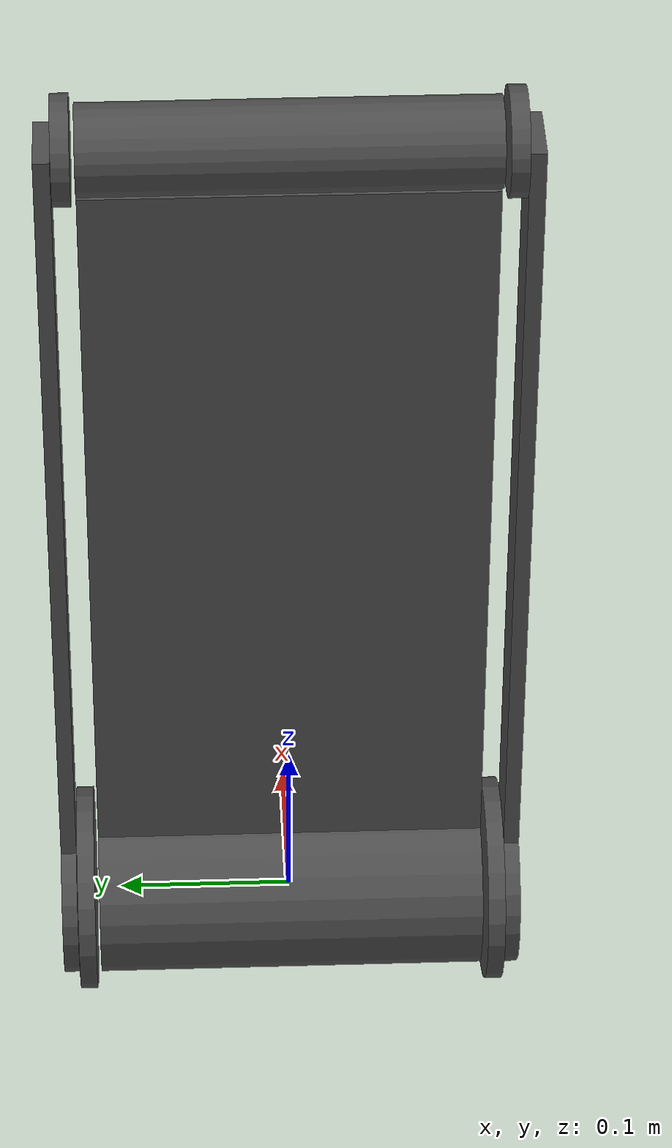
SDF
<?xml version='1.0'?>
<sdf version='1.6'>

  <model name='balance_robot'>

    <link name='base_robot'>
      <pose>0 0 0 0 0 0</pose>

      <inertial>
        <mass>20</mass>
        <pose>0 0 0.25 0 0 0</pose>
        <inertia>
          <ixx>0.17</ixx>
          <ixy>0</ixy>
          <ixz>0</ixz>
          <iyy>0.17</iyy>
          <iyz>0</iyz>
          <izz>0.07</izz>
        </inertia>
      </inertial>

      <visual name='body'>
        <pose>0 0 0.25 0 0 0</pose>
        <geometry>
          <box>
            <size>0.02 0.225 0.5</size>
          </box>
        </geometry>
        <material>
          <script>
            <uri>file://media/materials/scripts/gazebo.material</uri>
            <name>Gazebo/DarkGrey</name>
          </script>
        </material>
      </visual>

      <visual name='screen'>
        <pose>0.035 0 0.28 0 -0.04 0</pose>
        <geometry>
          <box>
            <size>0.002 0.225 0.45</size>
          </box>
        </geometry>
        <material>
          <script>
            <uri>file://media/materials/scripts/gazebo.material</uri>
            <name>Gazebo/Turquoise</name>
          </script>
        </material>
      </visual>

      <visual name='bottom_cylinder'>
        <pose>0 0 0 1.57 0 0</pose>
        <geometry>
          <cylinder>
            <radius>0.05</radius>
            <length>0.225</length>
          </cylinder>
        </geometry>
        <material>
          <script>
            <uri>file://media/materials/scripts/gazebo.material</uri>
            <name>Gazebo/DarkGrey</name>
          </script>
        </material>
      </visual>

      <collision name='bottom_cylinder_collision'>
        <pose>0 0 0 1.57 0 0</pose>
        <geometry>
          <cylinder>
            <radius>0.05</radius>
            <length>0.225</length>
          </cylinder>
        </geometry>
      </collision>

      <gravity>1</gravity>
      <velocity_decay/>
      <self_collide>0</self_collide>

    </link>

    <!-- Head -->

    <link name='head'>
      <pose>0 0 0.525 0 0 0</pose>

      <inertial>
        <mass>1</mass>
        <pose>0 0 0 0 0 0</pose>
        <inertia>
          <ixx>0.015</ixx>
          <ixy>0</ixy>
          <ixz>0</ixz>
          <iyy>0.005</iyy>
          <iyz>0</iyz>
          <izz>0.015</izz>
        </inertia>
      </inertial>

      <visual name='head_visual'>
        <pose>0 0 0 1.57 0 0</pose>
        <geometry>
          <cylinder>
            <radius>0.025</radius>
            <length>0.225</length>
          </cylinder>
        </geometry>
        <material>
          <script>
            <uri>file://media/materials/scripts/gazebo.material</uri>
            <name>Gazebo/DarkGrey</name>
          </script>
        </material>
      </visual>

      <collision name='head_collision'>
        <pose>0 0 0 1.57 0 0</pose>
        <geometry>
          <cylinder>
            <radius>0.025</radius>
            <length>0.225</length>
          </cylinder>
        </geometry>
      </collision>

      <sensor name="camera_imu" type="imu">
        <always_on>1</always_on>
      </sensor>

      <sensor name="camera" type="camera">
        <pose>0 0 0 0 0 0</pose>
        <camera>
          <horizontal_fov>2.0</horizontal_fov>
          <image>
            <format>R8G8B8</format>
            <width>640</width>
            <height>360</height>
          </image>
          <clip>
            <near>0.05</near>
            <far>15000</far>
          </clip>
        </camera>
        <always_on>1</always_on>
        <update_rate>10</update_rate>
        <visualize>false</visualize>

        <plugin name='camera_plugin' filename='libgazebo_ros_camera.so'>
          <alwaysOn>true</alwaysOn>
          <imageTopicName>image_raw</imageTopicName>
          <cameraInfoTopicName>camera_info</cameraInfoTopicName>
          <updateRate>30.0</updateRate>
          <cameraName>usb_cam</cameraName>
          <frameName>/robot_camera_link</frameName>
          <CxPrime>320.5</CxPrime>
          <Cx>320.5</Cx>
          <Cy>240.5</Cy>
          <hackBaseline>0</hackBaseline>
          <focalLength>277.191356</focalLength>
          <distortionK1>0.0</distortionK1>
          <distortionK2>0.0</distortionK2>
          <distortionK3>0.0</distortionK3>
          <distortionT1>0.0</distortionT1>
          <distortionT2>0.0</distortionT2>
        </plugin>

        <plugin name="GstCameraPlugin" filename="libgazebo_gst_camera_plugin.so">
            <robotNamespace></robotNamespace>
            <udpHost>127.0.0.1</udpHost>
            <udpPort>5600</udpPort>
        </plugin>

        <plugin name="CameraManagerPlugin" filename="libgazebo_camera_manager_plugin.so">
            <robotNamespace>550_frame</robotNamespace>
            <interval>1</interval>
            <width>3840</width>
            <height>2160</height>
            <maximum_zoom>8.0</maximum_zoom>
            <video_uri>5600</video_uri>
            <system_id>1</system_id>
            <cam_component_id>100</cam_component_id>
            <mavlink_cam_udp_port>14530</mavlink_cam_udp_port>
        </plugin>

      </sensor>

      <sensor name="depth_camera" type="depth">
        <pose>0 0 0 0 0 0</pose>
        <update_rate>30</update_rate>
        <camera>
          <horizontal_fov>1.02974</horizontal_fov>
          <image>
            <format>R8G8B8</format>
            <width>640</width>
            <height>480</height>
          </image>
          <clip>
            <near>0.5</near>
            <far>18</far>
          </clip>
        </camera>
        <plugin filename="libgazebo_ros_openni_kinect.so" name="camera_controller">
          <cameraName>camera</cameraName>
          <alwaysOn>true</alwaysOn>
          <updateRate>20</updateRate>
          <pointCloudCutoff>0.2</pointCloudCutoff>
          <pointCloudCutoffMax>20</pointCloudCutoffMax>
          <imageTopicName>rgb/image_raw</imageTopicName>
          <cameraInfoTopicName>rgb/camera_info</cameraInfoTopicName>
          <depthImageTopicName>depth/image_raw</depthImageTopicName>
          <depthImageCameraInfoTopicName>depth/camera_info</depthImageCameraInfoTopicName>
          <pointCloudTopicName>depth/points</pointCloudTopicName>
          <frameName>camera_link</frameName>
          <distortion_k1>0.0</distortion_k1>
          <distortion_k2>0.0</distortion_k2>
          <distortion_k3>0.0</distortion_k3>
          <distortion_t1>0.0</distortion_t1>
          <distortion_t2>0.0</distortion_t2>
        </plugin>
      </sensor>

    </link>

    <joint name='rotor_head' type='revolute'>
      <parent>base_robot</parent>
      <child>head</child>
      <pose>0 0 0 0 0 0</pose>
      <axis>
        <xyz>0 1 0</xyz>
        <limit>
          <lower>-1e+16</lower>
          <upper>1e+16</upper>
          <effort>-1</effort>
          <velocity>-1</velocity>
        </limit>
        <dynamics>
          <spring_reference>0</spring_reference>
          <spring_stiffness>0</spring_stiffness>
          <damping>0</damping>
          <friction>0</friction>
        </dynamics>
      </axis>
    </joint>

    <!-- Arm Left -->

    <link name="left_arm">
      <pose>0 0.13 0 0 0 0</pose>

      <inertial>
        <pose>0 0 0.25 0 0 0</pose>
        <mass>2</mass>
        <inertia>
          <ixx>0.1</ixx>
          <ixy>0</ixy>
          <ixz>0</ixz>
          <iyy>0.1</iyy>
          <iyz>0</iyz>
          <izz>0.005</izz>
        </inertia>
      </inertial>

      <collision name="collision">
        <pose>0 0 0.28 0 0 0</pose>
        <geometry>
          <box>
            <size>0.04 0.009 0.5</size>
          </box>
        </geometry>
          <surface>
            <friction>
              <torsional>
                <coefficient>0.25</coefficient>
                <use_patch_radius>1</use_patch_radius>
                <surface_radius>0.0686</surface_radius>
              </torsional>
              <ode>
                <mu>1.0</mu>
                <mu2>0.45</mu2>
                <fdir1>1 0 0</fdir1>
                <slip1>0.0</slip1>
                <slip2>0.0</slip2>
              </ode>
            </friction>
            <bounce>
              <restitution_coefficient>0</restitution_coefficient>
              <threshold>1e6</threshold>
            </bounce>
            <contact>
              <ode>
                <min_depth>0.001</min_depth>
                <max_vel>0.0</max_vel>
                <kp>1.0e6</kp>
                <kd>100.0</kd>
              </ode>
            </contact>
          </surface>
      </collision>

      <visual name="visual">
        <pose>0 0 0.28 0 0 0</pose>
        <geometry>
          <box>
            <size>0.04 0.009 0.5</size>
          </box>
        </geometry>
        <material>
          <script>
            <name>Gazebo/DarkGrey</name>
            <uri>__default__</uri>
          </script>
        </material>
      </visual>

      <visual name='bottom_cylinder'>
        <pose>0 0 0 1.57 0 0</pose>
        <geometry>
          <cylinder>
            <radius>0.05</radius>
            <length>0.009</length>
          </cylinder>
        </geometry>
        <material>
          <script>
            <uri>file://media/materials/scripts/gazebo.material</uri>
            <name>Gazebo/DarkGrey</name>
          </script>
        </material>
      </visual>

    </link>

    <joint type="revolute" name="left_arm_hinge">
      <pose>0 0 0 0 0 0</pose>
      <child>left_arm</child>
      <parent>base_robot</parent>
      <axis>
        <xyz>0 1 0</xyz>
        <limit>
          <lower>-1e+16</lower>
          <upper>1e+16</upper>
        </limit>
        <dynamics>
          <spring_reference>0</spring_reference>
          <spring_stiffness>0</spring_stiffness>
        </dynamics>
        <use_parent_model_frame>1</use_parent_model_frame>
      </axis>
    </joint>

    <!-- Arm Right -->

    <link name="right_arm">
      <pose>0 -0.13 0 0 0 0</pose>

      <inertial>
        <pose>0 0 0.25 0 0 0</pose>
        <mass>2</mass>
        <inertia>
          <ixx>0.1</ixx>
          <ixy>0</ixy>
          <ixz>0</ixz>
          <iyy>0.1</iyy>
          <iyz>0</iyz>
          <izz>0.005</izz>
        </inertia>
      </inertial>

      <collision name="collision">
        <pose>0 0 0.28 0 0 0</pose>
        <geometry>
          <box>
            <size>0.04 0.009 0.5</size>
          </box>
        </geometry>
          <surface>
            <friction>
              <torsional>
                <coefficient>0.25</coefficient>
                <use_patch_radius>1</use_patch_radius>
                <surface_radius>0.0686</surface_radius>
              </torsional>
              <ode>
                <mu>1.0</mu>
                <mu2>0.45</mu2>
                <fdir1>1 0 0</fdir1>
                <slip1>0.0</slip1>
                <slip2>0.0</slip2>
              </ode>
            </friction>
            <bounce>
              <restitution_coefficient>0</restitution_coefficient>
              <threshold>1e6</threshold>
            </bounce>
            <contact>
              <ode>
                <min_depth>0.001</min_depth>
                <max_vel>0.0</max_vel>
                <kp>1.0e6</kp>
                <kd>100.0</kd>
              </ode>
            </contact>
          </surface>
      </collision>

      <visual name="visual">
        <pose>0 0 0.28 0 0 0</pose>
        <geometry>
          <box>
            <size>0.04 0.009 0.5</size>
          </box>
        </geometry>
        <material>
          <script>
            <name>Gazebo/DarkGrey</name>
            <uri>__default__</uri>
          </script>
        </material>
      </visual>

      <visual name='bottom_cylinder'>
        <pose>0 0 0 1.57 0 0</pose>
        <geometry>
          <cylinder>
            <radius>0.05</radius>
            <length>0.009</length>
          </cylinder>
        </geometry>
        <material>
          <script>
            <uri>file://media/materials/scripts/gazebo.material</uri>
            <name>Gazebo/DarkGrey</name>
          </script>
        </material>
      </visual>

    </link>

    <joint type="revolute" name="right_arm_hinge">
      <pose>0 0 0 0 0 0</pose>
      <child>right_arm</child>
      <parent>base_robot</parent>
      <axis>
        <xyz>0 1 0</xyz>
        <limit>
          <lower>-1e+16</lower>
          <upper>1e+16</upper>
        </limit>
        <dynamics>
          <spring_reference>0</spring_reference>
          <spring_stiffness>0</spring_stiffness>
        </dynamics>
        <use_parent_model_frame>1</use_parent_model_frame>
      </axis>
    </joint>

    <!-- Left Top Wheel -->

    <link name="left_top_wheel">
      <pose>0 0.12 0.525 1.57 0 0</pose>

      <inertial>
        <pose>0 0 0 1.57 0 0</pose>
        <mass>0.4</mass>
        <inertia>
          <ixx>0.0003</ixx>
          <ixy>0</ixy>
          <ixz>0</ixz>
          <iyy>0.0003</iyy>
          <iyz>0</iyz>
          <izz>0.0004</izz>
        </inertia>
      </inertial>

      <collision name="collision">
        <geometry>
          <cylinder>
            <radius>0.03</radius>
            <length>0.01</length>
          </cylinder>
        </geometry>
          <surface>
            <friction>
              <torsional>
                <coefficient>0.25</coefficient>
                <use_patch_radius>1</use_patch_radius>
                <surface_radius>0.0686</surface_radius>
              </torsional>
              <ode>
                <mu>1.0</mu>
                <mu2>0.45</mu2>
                <fdir1>1 0 0</fdir1>
                <slip1>0.0</slip1>
                <slip2>0.0</slip2>
              </ode>
            </friction>
            <bounce>
              <restitution_coefficient>0</restitution_coefficient>
              <threshold>1e6</threshold>
            </bounce>
            <contact>
              <ode>
                <min_depth>0.001</min_depth>
                <max_vel>0.0</max_vel>
                <kp>1.0e6</kp>
                <kd>100.0</kd>
              </ode>
            </contact>
          </surface>
      </collision>

      <visual name="visual">
        <geometry>
          <cylinder>
            <radius>0.03</radius>
            <length>0.01</length>
          </cylinder>
        </geometry>
        <material>
          <script>
            <name>Gazebo/DarkGrey</name>
            <uri>__default__</uri>
          </script>
        </material>
      </visual>

    </link>

    <joint type="revolute" name="left_top_wheel_hinge">
      <pose>0 0 0 0 0 0</pose>
      <child>left_top_wheel</child>
      <parent>base_robot</parent>
      <axis>
        <xyz>0 1 0</xyz>
        <limit>
          <lower>-1e+16</lower>
          <upper>1e+16</upper>
        </limit>
        <dynamics>
          <spring_reference>0</spring_reference>
          <spring_stiffness>0</spring_stiffness>
        </dynamics>
        <use_parent_model_frame>1</use_parent_model_frame>
      </axis>
    </joint>

    <joint name='left_gearbox' type='gearbox'>
      <parent>left_bottom_wheel</parent>
      <child>left_top_wheel</child>
      <gearbox_ratio>-1</gearbox_ratio>
      <gearbox_reference_body>base_robot</gearbox_reference_body>
      <axis>
        <xyz>0 0 1</xyz>
      </axis>
      <axis2>
        <xyz>0 0 1</xyz>
      </axis2>
    </joint>

    <!-- Right Top Wheel -->

    <link name="right_top_wheel">
      <pose>0 -0.12 0.525 1.57 0 0</pose>

      <inertial>
        <pose>0 0 0 1.57 0 0</pose>
        <mass>0.4</mass>
        <inertia>
          <ixx>0.0003</ixx>
          <ixy>0</ixy>
          <ixz>0</ixz>
          <iyy>0.0003</iyy>
          <iyz>0</iyz>
          <izz>0.0004</izz>
        </inertia>
      </inertial>

      <collision name="collision">
        <geometry>
          <cylinder>
            <radius>0.03</radius>
            <length>0.01</length>
          </cylinder>
        </geometry>
          <surface>
            <friction>
              <torsional>
                <coefficient>0.25</coefficient>
                <use_patch_radius>1</use_patch_radius>
                <surface_radius>0.0686</surface_radius>
              </torsional>
              <ode>
                <mu>1.0</mu>
                <mu2>0.45</mu2>
                <fdir1>1 0 0</fdir1>
                <slip1>0.0</slip1>
                <slip2>0.0</slip2>
              </ode>
            </friction>
            <bounce>
              <restitution_coefficient>0</restitution_coefficient>
              <threshold>1e6</threshold>
            </bounce>
            <contact>
              <ode>
                <min_depth>0.001</min_depth>
                <max_vel>0.0</max_vel>
                <kp>1.0e6</kp>
                <kd>100.0</kd>
              </ode>
            </contact>
          </surface>
      </collision>

      <visual name="visual">
        <geometry>
          <cylinder>
            <radius>0.03</radius>
            <length>0.01</length>
          </cylinder>
        </geometry>
        <material>
          <script>
            <name>Gazebo/DarkGrey</name>
            <uri>__default__</uri>
          </script>
        </material>
      </visual>

    </link>

    <joint type="revolute" name="right_top_wheel_hinge">
      <pose>0 0 0 0 0 0</pose>
      <child>right_top_wheel</child>
      <parent>base_robot</parent>
      <axis>
        <xyz>0 1 0</xyz>
        <limit>
          <lower>-1e+16</lower>
          <upper>1e+16</upper>
        </limit>
        <dynamics>
          <spring_reference>0</spring_reference>
          <spring_stiffness>0</spring_stiffness>
        </dynamics>
        <use_parent_model_frame>1</use_parent_model_frame>
      </axis>
    </joint>

    <joint name='right_gearbox' type='gearbox'>
      <parent>right_bottom_wheel</parent>
      <child>right_top_wheel</child>
      <gearbox_ratio>-1</gearbox_ratio>
      <gearbox_reference_body>base_robot</gearbox_reference_body>
      <axis>
        <xyz>0 0 1</xyz>
      </axis>
      <axis2>
        <xyz>0 0 1</xyz>
      </axis2>
    </joint>

    <!-- Left Bottom Wheel -->

    <link name="left_bottom_wheel">
      <pose>0 0.12 0 1.57 0 0</pose>

      <inertial>
        <pose>0 0 0 1.57 0 0</pose>
        <mass>0.4</mass>
        <inertia>
          <ixx>0.0003</ixx>
          <ixy>0</ixy>
          <ixz>0</ixz>
          <iyy>0.0003</iyy>
          <iyz>0</iyz>
          <izz>0.0004</izz>
        </inertia>
      </inertial>

      <collision name="collision">
        <geometry>
          <cylinder>
            <radius>0.06</radius>
            <length>0.01</length>
          </cylinder>
        </geometry>
          <surface>
            <friction>
              <torsional>
                <coefficient>0.25</coefficient>
                <use_patch_radius>1</use_patch_radius>
                <surface_radius>0.0686</surface_radius>
              </torsional>
              <ode>
                <mu>1.0</mu>
                <mu2>0.45</mu2>
                <fdir1>1 0 0</fdir1>
                <slip1>0.0</slip1>
                <slip2>0.0</slip2>
              </ode>
            </friction>
            <bounce>
              <restitution_coefficient>0</restitution_coefficient>
              <threshold>1e6</threshold>
            </bounce>
            <contact>
              <ode>
                <min_depth>0.001</min_depth>
                <max_vel>0.0</max_vel>
                <kp>1.0e6</kp>
                <kd>100.0</kd>
              </ode>
            </contact>
          </surface>
      </collision>

      <visual name="visual">
        <geometry>
          <cylinder>
            <radius>0.06</radius>
            <length>0.01</length>
          </cylinder>
        </geometry>
        <material>
          <script>
            <name>Gazebo/DarkGrey</name>
            <uri>__default__</uri>
          </script>
        </material>
      </visual>

    </link>

    <joint type="revolute" name="left_bottom_wheel_hinge">
      <pose>0 0 0 0 0 0</pose>
      <child>left_bottom_wheel</child>
      <parent>base_robot</parent>
      <axis>
        <xyz>0 1 0</xyz>
        <limit>
          <lower>-1e+16</lower>
          <upper>1e+16</upper>
        </limit>
        <dynamics>
          <spring_reference>0</spring_reference>
          <spring_stiffness>0</spring_stiffness>
        </dynamics>
        <use_parent_model_frame>1</use_parent_model_frame>
      </axis>
    </joint>

    <!-- Right Bottom Wheel -->

    <link name="right_bottom_wheel">
      <pose>0 -0.12 0 1.57 0 0</pose>

      <inertial>
        <pose>0 0 0 1.57 0 0</pose>
        <mass>0.4</mass>
        <inertia>
          <ixx>0.0003</ixx>
          <ixy>0</ixy>
          <ixz>0</ixz>
          <iyy>0.0003</iyy>
          <iyz>0</iyz>
          <izz>0.0004</izz>
        </inertia>
      </inertial>

      <collision name="collision">
        <geometry>
          <cylinder>
            <radius>0.06</radius>
            <length>0.01</length>
          </cylinder>
        </geometry>
          <surface>
            <friction>
              <torsional>
                <coefficient>0.25</coefficient>
                <use_patch_radius>1</use_patch_radius>
                <surface_radius>0.0686</surface_radius>
              </torsional>
              <ode>
                <mu>1.0</mu>
                <mu2>0.45</mu2>
                <fdir1>1 0 0</fdir1>
                <slip1>0.0</slip1>
                <slip2>0.0</slip2>
              </ode>
            </friction>
            <bounce>
              <restitution_coefficient>0</restitution_coefficient>
              <threshold>1e6</threshold>
            </bounce>
            <contact>
              <ode>
                <min_depth>0.001</min_depth>
                <max_vel>0.0</max_vel>
                <kp>1.0e6</kp>
                <kd>100.0</kd>
              </ode>
            </contact>
          </surface>
      </collision>

      <visual name="visual">
        <geometry>
          <cylinder>
            <radius>0.06</radius>
            <length>0.01</length>
          </cylinder>
        </geometry>
        <material>
          <script>
            <name>Gazebo/DarkGrey</name>
            <uri>__default__</uri>
          </script>
        </material>
      </visual>

    </link>

    <joint type="revolute" name="right_bottom_wheel_hinge">
      <pose>0 0 0 0 0 0</pose>
      <child>right_bottom_wheel</child>
      <parent>base_robot</parent>
      <axis>
        <xyz>0 1 0</xyz>
        <limit>
          <lower>-1e+16</lower>
          <upper>1e+16</upper>
        </limit>
        <dynamics>
          <spring_reference>0</spring_reference>
          <spring_stiffness>0</spring_stiffness>
        </dynamics>
        <use_parent_model_frame>1</use_parent_model_frame>
      </axis>
    </joint>

    <!-- IMU -->

    <link name='imu_link'>
      <pose>0 0 0 0 0 0</pose>

      <inertial>
        <pose>0 0 0 0 0 0</pose>
        <mass>0.015</mass>
        <inertia>
          <ixx>1e-05</ixx>
          <ixy>0</ixy>
          <ixz>0</ixz>
          <iyy>1e-05</iyy>
          <iyz>0</iyz>
          <izz>1e-05</izz>
        </inertia>
      </inertial>

    </link>

    <joint name='imu_joint' type='revolute'>
      <child>imu_link</child>
      <parent>base_robot</parent>
      <axis>
        <xyz>1 0 0</xyz>
        <limit>
          <lower>0</lower>
          <upper>0</upper>
          <effort>0</effort>
          <velocity>0</velocity>
        </limit>
        <dynamics>
          <spring_reference>0</spring_reference>
          <spring_stiffness>0</spring_stiffness>
        </dynamics>
        <use_parent_model_frame>1</use_parent_model_frame>
      </axis>
    </joint>

    <!-- GPS -->

    <include>
      <uri>model://gps</uri>
      <pose>0 0 0 0 0 0</pose>
      <name>gps</name>
    </include>

    <joint name='gps_joint' type='fixed'>
      <child>gps::link</child>
      <parent>base_robot</parent>
    </joint>

    <!-- Magnetometer -->

    <plugin name='magnetometer_plugin' filename='libgazebo_magnetometer_plugin.so'>
      <robotNamespace/>
      <pubRate>100</pubRate>
      <noiseDensity>0.0004</noiseDensity>
      <randomWalk>6.4e-06</randomWalk>
      <biasCorrelationTime>600</biasCorrelationTime>
      <magTopic>/mag</magTopic>
    </plugin>

    <!-- Barometer -->

    <plugin name='barometer_plugin' filename='libgazebo_barometer_plugin.so'>
      <robotNamespace/>
      <pubRate>50</pubRate>
      <baroTopic>/baro</baroTopic>
    </plugin>

    <!-- Ground Truth -->

    <plugin name='groundtruth_plugin' filename='libgazebo_groundtruth_plugin.so'>
      <robotNamespace/>
    </plugin>

    <!-- Mavlink -->

    <plugin name='mavlink_interface' filename='libgazebo_mavlink_interface.so'>
      <robotNamespace></robotNamespace>
      <imuSubTopic>/imu</imuSubTopic>
      <magSubTopic>/mag</magSubTopic>
      <baroSubTopic>/baro</baroSubTopic>
      <mavlink_addr>INADDR_ANY</mavlink_addr>
      <mavlink_tcp_port>4560</mavlink_tcp_port>
      <mavlink_udp_port>14560</mavlink_udp_port>
      <serialEnabled>0</serialEnabled>
      <serialDevice>/dev/ttyACM0</serialDevice>
      <baudRate>921600</baudRate>
      <qgc_addr>INADDR_ANY</qgc_addr>
      <qgc_udp_port>14550</qgc_udp_port>
      <sdk_addr>INADDR_ANY</sdk_addr>
      <sdk_udp_port>14540</sdk_udp_port>
      <hil_mode>0</hil_mode>
      <hil_state_level>false</hil_state_level>
      <enable_lockstep>true</enable_lockstep>
      <use_tcp>true</use_tcp>
      <motorSpeedCommandPubTopic>/gazebo/command/motor_speed</motorSpeedCommandPubTopic>
      <control_channels>

        <channel name="left_front_wheel_drive">
          <input_index>0</input_index>
          <input_offset>0</input_offset>
          <input_scaling>1</input_scaling>
          <zero_position_disarmed>0</zero_position_disarmed>
          <zero_position_armed>0</zero_position_armed>
          <joint_control_type>velocity</joint_control_type>
          <joint_name>left_bottom_wheel_hinge</joint_name>
          <joint_control_pid>
            <p>0.1</p>
            <i>0</i>
            <d>0</d>
            <iMax>800</iMax>
            <iMin>-800</iMin>
            <cmdMax>1200</cmdMax>
            <cmdMin>-1200</cmdMin>
          </joint_control_pid>
        </channel>

        <channel name="right_front_wheel_drive">
          <input_index>1</input_index>
          <input_offset>0</input_offset>
          <input_scaling>1</input_scaling>
          <zero_position_disarmed>0</zero_position_disarmed>
          <zero_position_armed>0</zero_position_armed>
          <joint_control_type>velocity</joint_control_type>
          <joint_name>right_bottom_wheel_hinge</joint_name>
          <joint_control_pid>
            <p>0.1</p>
            <i>0</i>
            <d>0</d>
            <iMax>800</iMax>
            <iMin>-800</iMin>
            <cmdMax>1200</cmdMax>
            <cmdMin>-1200</cmdMin>
          </joint_control_pid>
        </channel>

        <channel name="left_leg">
          <input_index>2</input_index>
          <input_offset>1</input_offset>
          <input_scaling>1</input_scaling>
          <zero_position_disarmed>0</zero_position_disarmed>
          <zero_position_armed>0</zero_position_armed>
          <joint_control_type>position</joint_control_type>
          <joint_name>left_arm_hinge</joint_name>
          <joint_control_pid>
            <p>3.5</p>
            <i>0.5</i>
            <d>0</d>
            <iMax>4</iMax>
            <iMin>-4</iMin>
            <cmdMax>6</cmdMax>
            <cmdMin>-6</cmdMin>
          </joint_control_pid>
        </channel>

        <channel name="right_leg">
          <input_index>3</input_index>
          <input_offset>1</input_offset>
          <input_scaling>1</input_scaling>
          <zero_position_disarmed>0</zero_position_disarmed>
          <zero_position_armed>0</zero_position_armed>
          <joint_control_type>position</joint_control_type>
          <joint_name>right_arm_hinge</joint_name>
          <joint_control_pid>
            <p>3.5</p>
            <i>0.5</i>
            <d>0</d>
            <iMax>4</iMax>
            <iMin>-4</iMin>
            <cmdMax>6</cmdMax>
            <cmdMin>-6</cmdMin>
          </joint_control_pid>
        </channel>

      </control_channels>
    </plugin>
    <static>0</static>
    <allow_auto_disable>1</allow_auto_disable>

    <!-- IMU -->

    <plugin name='gazebo_imu_plugin' filename='libgazebo_imu_plugin.so'>
      <robotNamespace></robotNamespace>
      <linkName>imu_link</linkName>
      <imuTopic>/imu</imuTopic>
      <gyroscopeNoiseDensity>0.0003394</gyroscopeNoiseDensity>
      <gyroscopeRandomWalk>3.8785e-05</gyroscopeRandomWalk>
      <gyroscopeBiasCorrelationTime>1000.0</gyroscopeBiasCorrelationTime>
      <gyroscopeTurnOnBiasSigma>0.0087</gyroscopeTurnOnBiasSigma>
      <accelerometerNoiseDensity>0.004</accelerometerNoiseDensity>
      <accelerometerRandomWalk>0.006</accelerometerRandomWalk>
      <accelerometerBiasCorrelationTime>300.0</accelerometerBiasCorrelationTime>
      <accelerometerTurnOnBiasSigma>0.196</accelerometerTurnOnBiasSigma>
    </plugin>

  </model>
</sdf>
